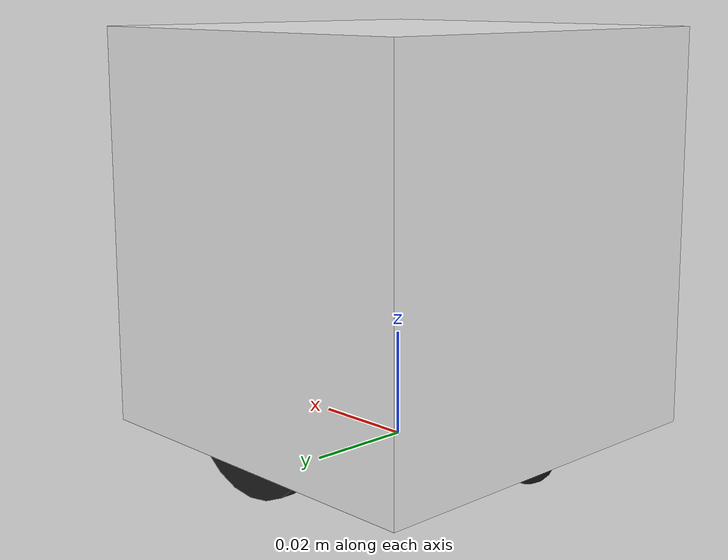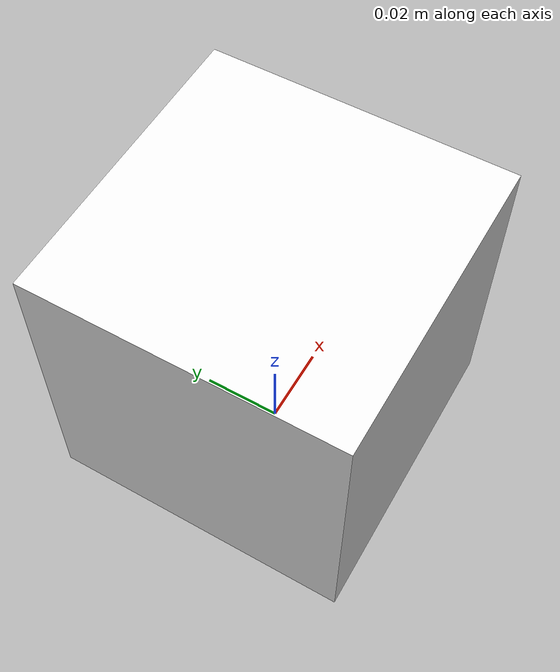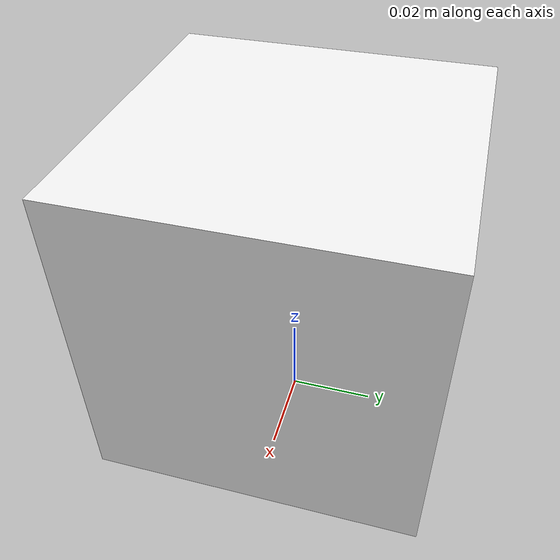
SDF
<?xml version='1.0'?>
<sdf version='1.6'>

  <model name='vsssoccer_robot'>

    <link name='base'>
      <inertial>
        <pose frame=''>0.001453 -0.000453 0.029787 0 0 0</pose> <!-- m m m rad rad rad -->
        <inertia>
          <!-- kg.m² -->
          <ixx>0.0004219</ixx>
          <!-- com ixx=0.5 robo escorragava em momentos aleatórios e gazebo quebrou apos alguns segundos -->
          <ixy>0</ixy>
          <ixz>0</ixz>
          <iyy>0.0004219</iyy>
          <iyz>0</iyz>
          <izz>0.0004219</izz>
          <!-- com izz=0.000004219 robo escapava mais vezes da trajetoria da circunferencia, mas ela continou com o mesmo diametrp -->
          <!-- com izz=0.055 robo não conseguia virar e ia reto, ou seja, não fazia a circunferencia -->
        </inertia>
        <mass>0.45</mass> <!-- kg -->
      </inertial>
      <pose frame=''>0 0 0 0 0 0</pose>
      <kinematic>0</kinematic>
      <gravity>1</gravity>

      <visual name='base_visual'>
        <pose frame=''>0 0 0.04 0 0 0</pose>
        <geometry>
          <box>
            <size>0.075 0.075 0.075</size>
          </box>
        </geometry>
        <material>
          <script>
            <uri>file://media/materials/scripts/gazebo.material</uri>
            <name>Gazebo/White</name>
          </script>
        </material>
      </visual>
      <collision name='base_collision'>
        <pose frame=''>0 0 0.04 0 0 0</pose>
        <geometry>
          <box>
            <size>0.075 0.075 0.075</size>
          </box>
        </geometry>
        <surface>
          <friction>
            <ode>
              <mu>1</mu>
              <mu2>1</mu2>
              <!-- 1 ou 0.8 fizeram a mesma circuferencia para vel 4 e 2  -->
            </ode>
          </friction>
          <contact>
            <ode>
              <kp>1e+13</kp>
              <kd>1</kd>
            </ode>
            <bullet>
              <kp>1e+13</kp>
              <kd>1</kd>
            </bullet>
          </contact>
        </surface>
      </collision>

      <visual name='rear_wheel_visual'>
        <pose frame=''>-0.0325 0 0.004 0 0 0</pose>
        <geometry>
          <sphere>
            <radius>0.005</radius>
          </sphere>
        </geometry>
        <material>
          <script>
            <uri>file://media/materials/scripts/gazebo.material</uri>
            <name>Gazebo/Black</name>
          </script>
        </material>
      </visual>
      <collision name='rear_wheel_collision'>
        <pose frame=''>-0.0325 0 0.004 0 0 0</pose>
        <geometry>
          <sphere>
            <radius>0.005</radius>
          </sphere>
        </geometry>
        <surface>
          <friction>
            <ode>
              <mu>0.1</mu>
              <mu2>0.1</mu2>
              <!-- A circuferencia foi igual com 0.3 e 0 para velocidades 4 e 2 -->
              <!-- A inercia do robo parado alterou. Para mu=0 robo deslizava. Para mu=0.3 robo desliza pouquissimo -->
            </ode>
          </friction>
          <contact>
            <ode>
              <kp>1e+13</kp>
              <kd>1</kd>
            </ode>
            <bullet>
              <kp>1e+13</kp>
              <kd>1</kd>
            </bullet>
          </contact>
        </surface>
      </collision>

      <visual name='front_wheel_visual'>
        <pose frame=''>0.0325 0 0.004 0 0 0</pose>
        <geometry>
          <sphere>
            <radius>0.005</radius>
          </sphere>
        </geometry>
        <material>
          <script>
            <uri>file://media/materials/scripts/gazebo.material</uri>
            <name>Gazebo/Black</name>
          </script>
        </material>
      </visual>
      <collision name='front_wheel_collision'>
        <pose frame=''>0.0325 0 0.004 0 0 0</pose>
        <geometry>
          <sphere>
            <radius>0.005</radius>
          </sphere>
        </geometry>
        <surface>
          <friction>
            <ode>
              <mu>0.1</mu>
              <mu2>0.1</mu2>
              <!-- A circuferencia foi igual com 0.3 e 0 para velocidades 4 e 2 -->
              <!-- A inercia do robo parado alterou. Para mu=0 robo deslizava. Para mu=0.3 robo desliza pouquissimo -->
            </ode>
          </friction>
          <contact>
            <ode>
              <kp>1e+13</kp>
              <kd>1</kd>
            </ode>
            <bullet>
              <kp>1e+13</kp>
              <kd>1</kd>
            </bullet>
          </contact>
        </surface>
      </collision>
    </link>

    <link name='left_wheel'>
      <pose frame=''>0 0.0345 0.014 0 0 0</pose>
      <inertial>
        <inertia>
        <!-- corrigir inercia paralela -->
          <ixx>0.000000365</ixx>
          <ixy>0</ixy>
          <ixz>0</ixz>
          <iyy>0.000000723</iyy>
          <iyz>0</iyz>
          <izz>0.000000365</izz>
        </inertia>
        <!-- 5 gramas -->
        <mass>0.005</mass>
        <pose frame=''>0 0 0 0 0 0</pose>
      </inertial>
      <kinematic>0</kinematic>
      <gravity>1</gravity>
      <visual name='visual'>
        <pose frame=''>0 0 0 0 1.5707 1.5707</pose>
        <geometry>
          <cylinder>
            <radius>0.017</radius>
            <length>0.003</length>
          </cylinder>
        </geometry>
        <material>
          <script>
            <uri>file://media/materials/scripts/gazebo.material</uri>
            <name>Gazebo/Black</name>
          </script>
        </material>
      </visual>
      <collision name='collision'>
        <pose frame=''>0 0 0 0 1.5707 1.5707</pose>
        <geometry>
          <cylinder>
            <radius>0.017</radius>
            <length>0.003</length>
          </cylinder>
        </geometry>
        <surface>
          <friction>
            <ode>
              <mu>1</mu>
              <mu2>1</mu2>
              <fdir1>0 0 0</fdir1>
              <slip1>0</slip1>
              <slip2>0</slip2>
              <!-- A circunferência para vel 4 e 2 permaneceu igual com mu 0.7, 1 e 2. Portanto, não altera dinâmica -->
            </ode>
            <torsional>
              <coefficient>1</coefficient>
              <patch_radius>0</patch_radius>
              <surface_radius>0</surface_radius>
              <use_patch_radius>1</use_patch_radius>
              <ode>
                <slip>0</slip>
              </ode>
            </torsional>
          </friction>
          <contact>
            <ode>
              <kp>1e+13</kp>
              <kd>1</kd>
            </ode>
            <bullet>
              <kp>1e+13</kp>
              <kd>1</kd>
            </bullet>
          </contact>
        </surface>
      </collision>
    </link>

    <link name='right_wheel'>
      <pose frame=''>0 -0.0345 0.014 0 0 0</pose>
      <inertial>
        <inertia>
          <ixx>0.000000365</ixx>
          <ixy>0</ixy>
          <ixz>0</ixz>
          <iyy>0.000000723</iyy>
          <iyz>0</iyz>
          <izz>0.000000365</izz>
        </inertia>
        <mass>0.005</mass>
        <pose frame=''>0 0 0 0 0 0</pose>
      </inertial>
      <kinematic>0</kinematic>
      <gravity>1</gravity>
      <visual name='visual'>
        <pose frame=''>0 0 0 0 1.5707 1.5707</pose>
        <geometry>
          <cylinder>
            <radius>0.017</radius>
            <length>0.003</length>
          </cylinder>
        </geometry>
        <material>
          <script>
            <uri>file://media/materials/scripts/gazebo.material</uri>
            <name>Gazebo/Black</name>
          </script>
        </material>
      </visual>
      <collision name='collision'>
        <pose frame=''>0 0 0 0 1.5707 1.5707</pose>
        <geometry>
          <cylinder>
            <radius>0.017</radius>
            <length>0.003</length>
          </cylinder>
        </geometry>
        <surface>
          <friction>
            <ode>
              <mu>1</mu>
              <mu2>1</mu2>
              <fdir1>0 0 0</fdir1>
              <slip1>0</slip1>
              <slip2>0</slip2>
              <!-- A circunferência para vel 4 e 2 permaneceu igual com mu 0.7, 1 e 2. Portanto, não altera dinâmica -->
            </ode>
            <torsional>
              <coefficient>1</coefficient>
              <patch_radius>0</patch_radius>
              <surface_radius>0</surface_radius>
              <use_patch_radius>1</use_patch_radius>
              <ode>
                <slip>0</slip>
              </ode>
            </torsional>
          </friction>
          <contact>
            <ode>
              <kp>1e+13</kp>
              <kd>1</kd>
            </ode>
            <bullet>
              <kp>1e+13</kp>
              <kd>1</kd>
            </bullet>
          </contact>
        </surface>
      </collision>
    </link>

    <joint name='left_wheel' type='revolute'>
      <parent>base</parent>
      <child>left_wheel</child>
      <pose frame=''>0 0 0 0 0 0</pose>
      <axis>
        <xyz>0 1 0</xyz>
        <use_parent_model_frame>0</use_parent_model_frame>
        <dynamics>
          <damping>0</damping>
          <friction>0</friction>
        </dynamics>
      </axis>
    </joint>

    <joint name='right_wheel' type='revolute'>
      <parent>base</parent>
      <child>right_wheel</child>
      <pose frame=''>0 0 0 0 0 0</pose>
      <axis>
        <xyz>0 1 0</xyz>
        <use_parent_model_frame>0</use_parent_model_frame>
        <dynamics>
          <damping>0</damping>
          <friction>0</friction>
        </dynamics>
      </axis>
    </joint>

    <plugin name='differential_drive_controller' filename='libgazebo_ros_diff_drive.so'>
      <alwaysOn>true</alwaysOn>
      <updateRate>33</updateRate>
      <leftJoint>left_wheel</leftJoint>
      <rightJoint>right_wheel</rightJoint>
      <wheelSeparation>0.069</wheelSeparation>
      <wheelDiameter>0.034</wheelDiameter>
      <torque>0.019862</torque>
      <commandTopic>cmd_vel_home1</commandTopic>
      <odometryTopic>odom</odometryTopic>
      <odometryFrame>odom</odometryFrame>
      <robotBaseFrame>base</robotBaseFrame>
    </plugin>

  </model>
</sdf>
